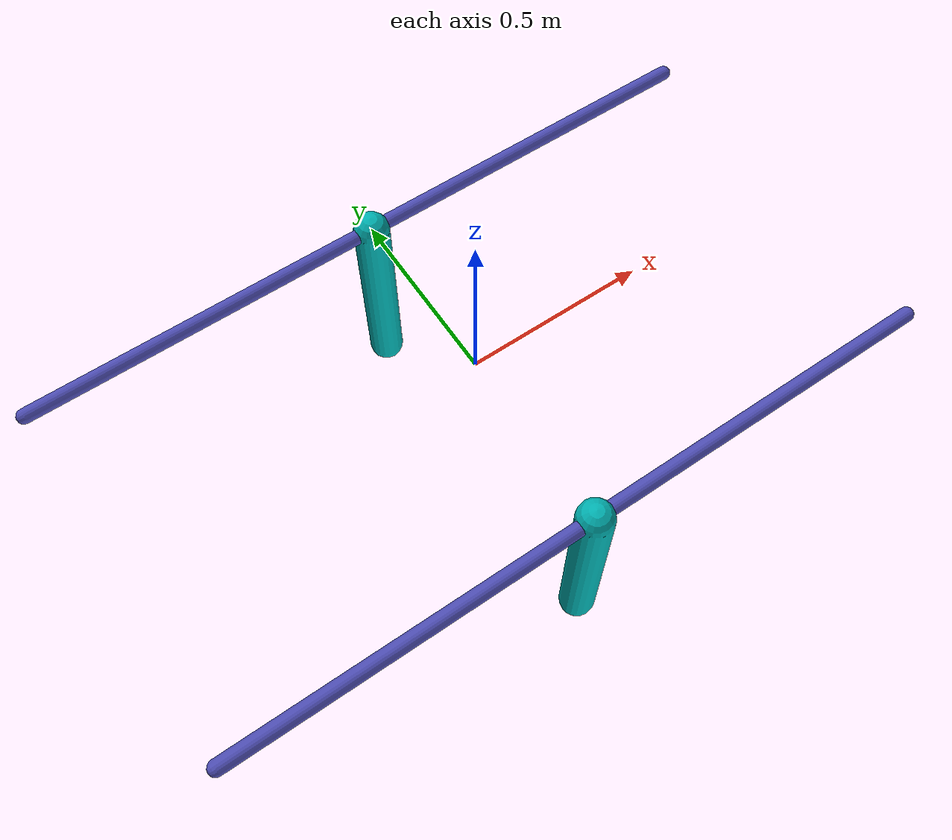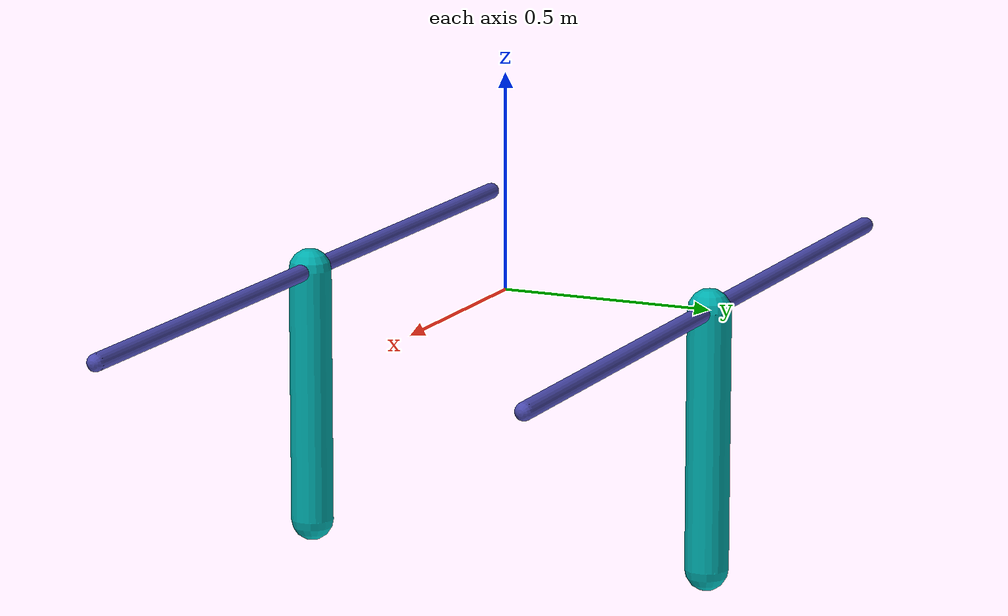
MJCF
<?xml version="1.0" encoding="utf-8"?>

<mujoco>
    <include file="practice1_shared_config.xml"/> <!--Import config-->

    <worldbody>
        <body name="pendulum_front" pos="0 -0.5 0">
            <include file="practice1_base_front.xml"/> <!--Import kinematic chain-->
        </body>
        <body name="pendulum_back" pos="0 0.5 0">
            <include file="practice1_base_back.xml"/> <!--Import kinematic chain-->
        </body>
    </worldbody>

    <!--Define actuators-->
    <actuator>
        <motor joint="front_hinge" name="front_hinge" ctrlrange="-100 100"/> <!--Torque control-->
        <motor joint="back_hinge" name="back_hinge" ctrlrange="-100 100"/> <!--Torque control-->
	</actuator>
</mujoco>

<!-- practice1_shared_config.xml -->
<mujoco>
    <!--Infer masses and inertial masses from geometry-->
	<compiler inertiafromgeom="true"/>

    <!--Global defaults-->
	<default>
		<joint armature="0" damping="1" limited="true"/>
		<geom contype="0" friction="1 0.1 0.1" rgba="0.7 0.7 0 1"/>
		<tendon/>
		<motor ctrlrange="-3 3"/>
	</default>

    <!--Simulator options-->
	<option gravity="0 0 -9.81" integrator="RK4" timestep="0.02"/>
	<size nstack="3000"/>
</mujoco>

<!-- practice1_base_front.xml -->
<mujoco model="pendulum">
    <!--Define bodies-->
	<body>
		<geom name="front_bar" pos="0 0 0" quat="0.707 0 0.707 0" rgba="0.3 0.3 0.7 1" size="0.02 1" type="capsule"/>
		<body name="front_pole" pos="0 0 0">
			<joint axis="0 1 0" name="front_hinge" pos="0 0 0" limited="false" type="hinge"/>
			<geom fromto="0 0 0 0.001 0 -0.6" name="front_pole" rgba="0 0.7 0.7 1" size="0.05 0.3" type="capsule"/>
		</body>
	</body>
</mujoco>

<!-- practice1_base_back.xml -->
<mujoco model="pendulum">
    <!--Define bodies-->
	<body>
		<geom name="back_bar" pos="0 0 0" quat="0.707 0 0.707 0" rgba="0.3 0.3 0.7 1" size="0.02 1" type="capsule"/>
		<body name="back_pole" pos="0 0 0">
			<joint axis="0 1 0" name="back_hinge" pos="0 0 0" limited="false" type="hinge"/>
			<geom fromto="0 0 0 0.001 0 -0.6" name="back_pole" rgba="0 0.7 0.7 1" size="0.05 0.3" type="capsule"/>
		</body>
	</body>
</mujoco>
